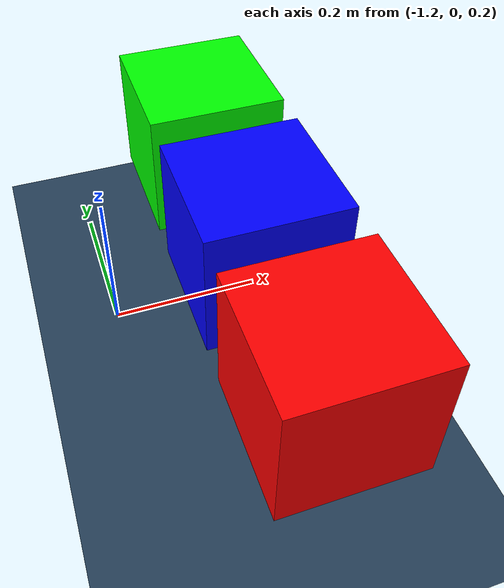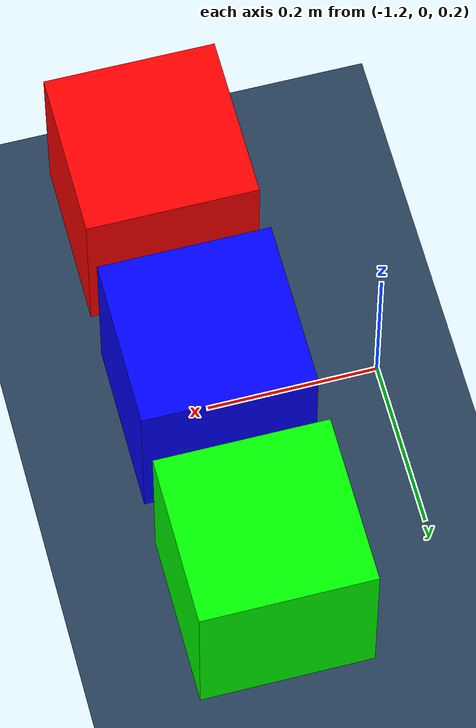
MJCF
<mujoco>
    <statistic center="0 0 0.1" extent="0.6" meansize=".05"/>
    <visual>
        <headlight diffuse="0.6 0.6 0.6" ambient="0.3 0.3 0.3" specular="0 0 0"/>
        <rgba haze="0.15 0.25 0.35 1"/>
        <global azimuth="-20" elevation="-20" ellipsoidinertia="true"/>
    </visual>

    <asset>
        <texture type="skybox" builtin="gradient" rgb1="0.3 0.5 0.7" rgb2="0 0 0" width="512" height="3072"/>
        <texture type="2d" name="groundplane" builtin="checker" mark="edge" rgb1="0.2 0.3 0.4" rgb2="0.1 0.2 0.3" markrgb="0.8 0.8 0.8" width="300" height="300"/>
        <material name="groundplane" texture="groundplane" texuniform="true" texrepeat="5 5" reflectance="0.2"/>
    </asset>

    <worldbody>
        <light pos="0 0 1.5" dir="0 0 -1" directional="true"/>
        <body name="body" pos="0 0 0.1">
            <geom name="floor" size="0 0 0.05" type="plane" material="groundplane"/>
            <geom name="box1" type="box" size="0.1 0.1 0.1" pos="-1 0 0.2" condim="1" rgba="0 0 1 1" quat="1 0 0 0"/>
            <geom name="box2" type="box" size="0.1 0.1 0.1" pos="-1 0.25 0.2" condim="1" rgba="0 1 0 1" quat="1 0 0 0"/>
            <geom name="box3" type="box" size="0.1 0.1 0.1" pos="-1 -0.25 0.2" rgba="1 0 0 1" condim="1" quat="1 0 0 0"/>
        </body>
    </worldbody>
</mujoco>
